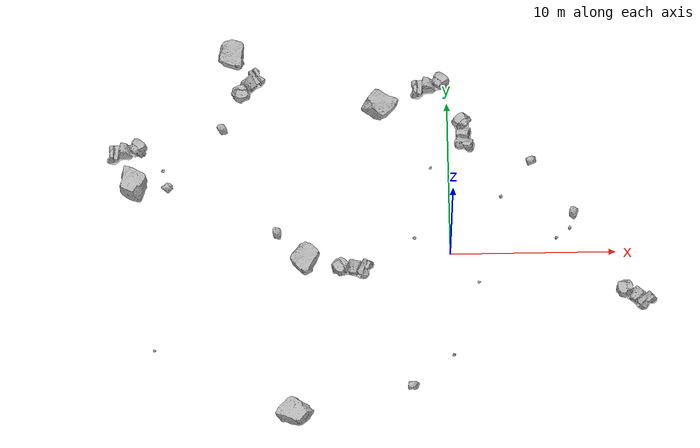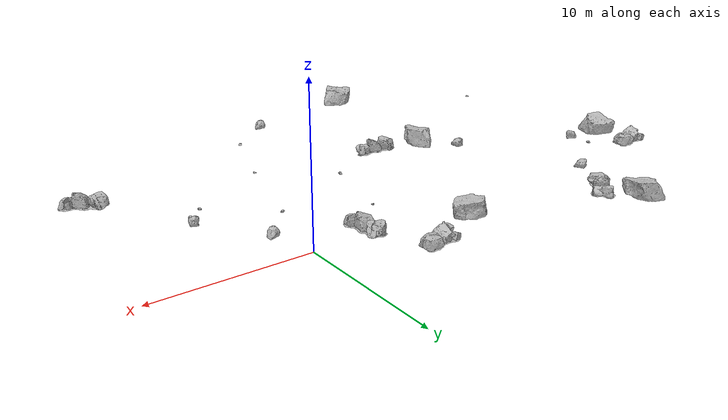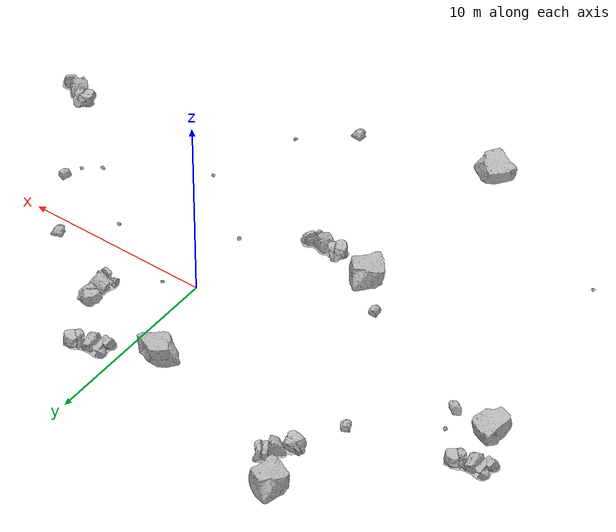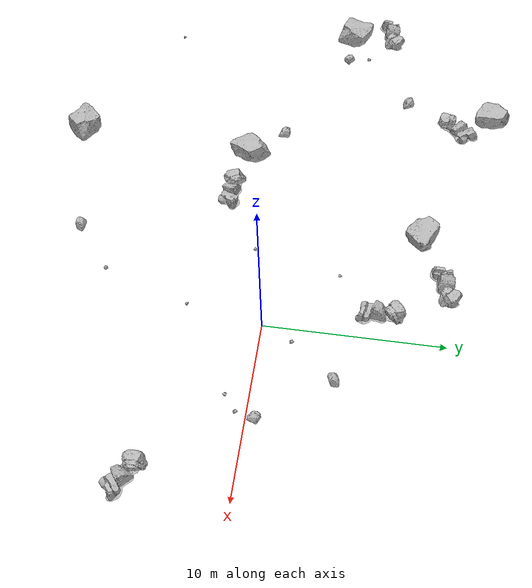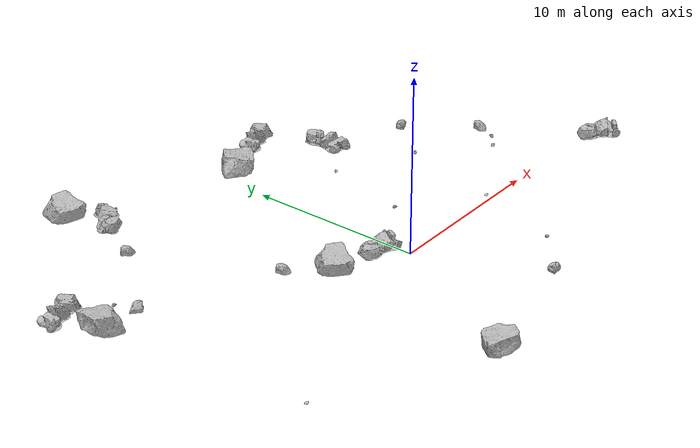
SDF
<sdf version="1.7">
 <world name="marsyard">
  <gravity>0 0 -9.81</gravity>
  <physics name="dart_physics" type="ignored">
   <max_step_size>0.003</max_step_size>
   <real_time_update_rate>333</real_time_update_rate>
   <real_time_factor>1.0</real_time_factor>
  </physics>
  <plugin filename="ignition-gazebo-physics-system" name="ignition::gazebo::systems::Physics"/>
  <plugin filename="ignition-gazebo-user-commands-system" name="ignition::gazebo::systems::UserCommands"/>
  <plugin filename="ignition-gazebo-scene-broadcaster-system" name="ignition::gazebo::systems::SceneBroadcaster"/>
  <plugin filename="ignition-gazebo-contact-system" name="ignition::gazebo::systems::Contact"/>
  <scene>
   <ambient>0.95 0.95 0.95 1</ambient>
   <background>0.70 0.70 0.70 1</background>
   <shadows>false</shadows>
  </scene>
  <light type="directional" name="sun">
   <cast_shadows>false</cast_shadows>
   <pose>0 0 30 0 0 0</pose>
   <diffuse>1 1 1 1</diffuse>
   <specular>0.15 0.15 0.15 1</specular>
   <direction>-0.35 0.1 -0.93</direction>
  </light>
  <model name="Rock_1">
   <static>true</static>
   <pose>-12.1127 9.4394 4.0000 0.0000 0.0000 0.9002</pose>
   <link name="link">
    <visual name="visual">
     <geometry><mesh><uri>package://rock_generator/rocks_ws/rock_2/meshes/rock_2.stl</uri></mesh></geometry>
    </visual>
    <collision name="collision">
     <geometry><mesh><uri>package://rock_generator/rocks_ws/rock_2/meshes/rock_2.stl</uri></mesh></geometry>
    </collision>
   </link>
  </model>
  <model name="Rock_2">
   <static>true</static>
   <pose>7.0466 -0.0682 4.0000 0.0000 0.0000 2.5591</pose>
   <link name="link">
    <visual name="visual">
     <geometry><mesh><uri>package://rock_generator/rocks_ws/rock_9/meshes/rock_9.stl</uri></mesh></geometry>
    </visual>
    <collision name="collision">
     <geometry><mesh><uri>package://rock_generator/rocks_ws/rock_9/meshes/rock_9.stl</uri></mesh></geometry>
    </collision>
   </link>
  </model>
  <model name="Rock_3">
   <static>true</static>
   <pose>-13.6706 6.5860 4.0000 0.0000 0.0000 3.1077</pose>
   <link name="link">
    <visual name="visual">
     <geometry><mesh><uri>package://rock_generator/rocks_ws/rock_3/meshes/rock_3.stl</uri></mesh></geometry>
    </visual>
    <collision name="collision">
     <geometry><mesh><uri>package://rock_generator/rocks_ws/rock_3/meshes/rock_3.stl</uri></mesh></geometry>
    </collision>
   </link>
  </model>
  <model name="Rock_5">
   <static>true</static>
   <pose>6.2349 -0.7087 4.0000 0.0000 0.0000 1.3610</pose>
   <link name="link">
    <visual name="visual">
     <geometry><mesh><uri>package://rock_generator/rocks_ws/rock_9/meshes/rock_9.stl</uri></mesh></geometry>
    </visual>
    <collision name="collision">
     <geometry><mesh><uri>package://rock_generator/rocks_ws/rock_9/meshes/rock_9.stl</uri></mesh></geometry>
    </collision>
   </link>
  </model>
  <model name="Rock_7">
   <static>true</static>
   <pose>-17.6371 -7.5418 4.0000 0.0000 0.0000 2.0001</pose>
   <link name="link">
    <visual name="visual">
     <geometry><mesh><uri>package://rock_generator/rocks_ws/rock_7/meshes/rock_7.stl</uri></mesh></geometry>
    </visual>
    <collision name="collision">
     <geometry><mesh><uri>package://rock_generator/rocks_ws/rock_7/meshes/rock_7.stl</uri></mesh></geometry>
    </collision>
   </link>
  </model>
  <model name="Rock_8">
   <static>true</static>
   <pose>-12.9017 11.4204 4.0000 0.0000 0.0000 -2.6936</pose>
   <link name="link">
    <visual name="visual">
     <geometry><mesh><uri>package://rock_generator/rocks_ws/rock_1/meshes/rock_1.stl</uri></mesh></geometry>
    </visual>
    <collision name="collision">
     <geometry><mesh><uri>package://rock_generator/rocks_ws/rock_1/meshes/rock_1.stl</uri></mesh></geometry>
    </collision>
   </link>
  </model>
  <model name="Rock_9">
   <static>true</static>
   <pose>1.5632 -3.4748 4.0000 0.0000 0.0000 2.2478</pose>
   <link name="link">
    <visual name="visual">
     <geometry><mesh><uri>package://rock_generator/rocks_ws/rock_7/meshes/rock_7.stl</uri></mesh></geometry>
    </visual>
    <collision name="collision">
     <geometry><mesh><uri>package://rock_generator/rocks_ws/rock_7/meshes/rock_7.stl</uri></mesh></geometry>
    </collision>
   </link>
  </model>
  <model name="Rock_12">
   <static>true</static>
   <pose>4.9096 4.2691 4.0000 0.0000 0.0000 -1.7466</pose>
   <link name="link">
    <visual name="visual">
     <geometry><mesh><uri>package://rock_generator/rocks_ws/rock_3/meshes/rock_3.stl</uri></mesh></geometry>
    </visual>
    <collision name="collision">
     <geometry><mesh><uri>package://rock_generator/rocks_ws/rock_3/meshes/rock_3.stl</uri></mesh></geometry>
    </collision>
   </link>
  </model>
  <model name="Rock_13">
   <static>true</static>
   <pose>10.7159 -4.4183 4.0000 0.0000 0.0000 -0.5274</pose>
   <link name="link">
    <visual name="visual">
     <geometry><mesh><uri>package://rock_generator/rocks_ws/rock_2/meshes/rock_2.stl</uri></mesh></geometry>
    </visual>
    <collision name="collision">
     <geometry><mesh><uri>package://rock_generator/rocks_ws/rock_2/meshes/rock_2.stl</uri></mesh></geometry>
    </collision>
   </link>
  </model>
  <model name="Rock_15">
   <static>true</static>
   <pose>-19.1155 3.0818 4.0000 0.0000 0.0000 0.3928</pose>
   <link name="link">
    <visual name="visual">
     <geometry><mesh><uri>package://rock_generator/rocks_ws/rock_1/meshes/rock_1.stl</uri></mesh></geometry>
    </visual>
    <collision name="collision">
     <geometry><mesh><uri>package://rock_generator/rocks_ws/rock_1/meshes/rock_1.stl</uri></mesh></geometry>
    </collision>
   </link>
  </model>
  <model name="Rock_16">
   <static>true</static>
   <pose>-9.5150 -11.7406 4.0000 0.0000 0.0000 1.6917</pose>
   <link name="link">
    <visual name="visual">
     <geometry><mesh><uri>package://rock_generator/rocks_ws/rock_1/meshes/rock_1.stl</uri></mesh></geometry>
    </visual>
    <collision name="collision">
     <geometry><mesh><uri>package://rock_generator/rocks_ws/rock_1/meshes/rock_1.stl</uri></mesh></geometry>
    </collision>
   </link>
  </model>
  <model name="Rock_19">
   <static>true</static>
   <pose>-1.1598 3.9647 4.0000 0.0000 0.0000 -2.8681</pose>
   <link name="link">
    <visual name="visual">
     <geometry><mesh><uri>package://rock_generator/rocks_ws/rock_7/meshes/rock_7.stl</uri></mesh></geometry>
    </visual>
    <collision name="collision">
     <geometry><mesh><uri>package://rock_generator/rocks_ws/rock_7/meshes/rock_7.stl</uri></mesh></geometry>
    </collision>
   </link>
  </model>
  <model name="Rock_21">
   <static>true</static>
   <pose>-10.4216 -0.2347 4.0000 0.0000 0.0000 2.6763</pose>
   <link name="link">
    <visual name="visual">
     <geometry><mesh><uri>package://rock_generator/rocks_ws/rock_3/meshes/rock_3.stl</uri></mesh></geometry>
    </visual>
    <collision name="collision">
     <geometry><mesh><uri>package://rock_generator/rocks_ws/rock_3/meshes/rock_3.stl</uri></mesh></geometry>
    </collision>
   </link>
  </model>
  <model name="Rock_22">
   <static>true</static>
   <pose>-1.0705 9.3734 4.0000 0.0000 0.0000 -2.8267</pose>
   <link name="link">
    <visual name="visual">
     <geometry><mesh><uri>package://rock_generator/rocks_ws/rock_2/meshes/rock_2.stl</uri></mesh></geometry>
    </visual>
    <collision name="collision">
     <geometry><mesh><uri>package://rock_generator/rocks_ws/rock_2/meshes/rock_2.stl</uri></mesh></geometry>
    </collision>
   </link>
  </model>
  <model name="Rock_23">
   <static>true</static>
   <pose>7.2572 0.8362 4.0000 0.0000 0.0000 2.2958</pose>
   <link name="link">
    <visual name="visual">
     <geometry><mesh><uri>package://rock_generator/rocks_ws/rock_3/meshes/rock_3.stl</uri></mesh></geometry>
    </visual>
    <collision name="collision">
     <geometry><mesh><uri>package://rock_generator/rocks_ws/rock_3/meshes/rock_3.stl</uri></mesh></geometry>
    </collision>
   </link>
  </model>
  <model name="Rock_24">
   <static>true</static>
   <pose>-4.0516 8.0776 4.0000 0.0000 0.0000 -1.4943</pose>
   <link name="link">
    <visual name="visual">
     <geometry><mesh><uri>package://rock_generator/rocks_ws/rock_1/meshes/rock_1.stl</uri></mesh></geometry>
    </visual>
    <collision name="collision">
     <geometry><mesh><uri>package://rock_generator/rocks_ws/rock_1/meshes/rock_1.stl</uri></mesh></geometry>
    </collision>
   </link>
  </model>
  <model name="Rock_25">
   <static>true</static>
   <pose>3.0085 2.0274 4.0000 0.0000 0.0000 2.3454</pose>
   <link name="link">
    <visual name="visual">
     <geometry><mesh><uri>package://rock_generator/rocks_ws/rock_9/meshes/rock_9.stl</uri></mesh></geometry>
    </visual>
    <collision name="collision">
     <geometry><mesh><uri>package://rock_generator/rocks_ws/rock_9/meshes/rock_9.stl</uri></mesh></geometry>
    </collision>
   </link>
  </model>
  <model name="Rock_28">
   <static>true</static>
   <pose>-17.2022 4.0158 4.0000 0.0000 0.0000 0.2180</pose>
   <link name="link">
    <visual name="visual">
     <geometry><mesh><uri>package://rock_generator/rocks_ws/rock_9/meshes/rock_9.stl</uri></mesh></geometry>
    </visual>
    <collision name="collision">
     <geometry><mesh><uri>package://rock_generator/rocks_ws/rock_9/meshes/rock_9.stl</uri></mesh></geometry>
    </collision>
   </link>
  </model>
  <model name="Rock_29">
   <static>true</static>
   <pose>-6.0046 -2.4779 4.0000 0.0000 0.0000 -0.0550</pose>
   <link name="link">
    <visual name="visual">
     <geometry><mesh><uri>package://rock_generator/rocks_ws/rock_2/meshes/rock_2.stl</uri></mesh></geometry>
    </visual>
    <collision name="collision">
     <geometry><mesh><uri>package://rock_generator/rocks_ws/rock_2/meshes/rock_2.stl</uri></mesh></geometry>
    </collision>
   </link>
  </model>
  <model name="Rock_31">
   <static>true</static>
   <pose>-0.0194 -8.0495 4.0000 0.0000 0.0000 -1.6283</pose>
   <link name="link">
    <visual name="visual">
     <geometry><mesh><uri>package://rock_generator/rocks_ws/rock_9/meshes/rock_9.stl</uri></mesh></geometry>
    </visual>
    <collision name="collision">
     <geometry><mesh><uri>package://rock_generator/rocks_ws/rock_9/meshes/rock_9.stl</uri></mesh></geometry>
    </collision>
   </link>
  </model>
  <model name="Rock_32">
   <static>true</static>
   <pose>-2.2229 -0.5838 4.0000 0.0000 0.0000 -0.0293</pose>
   <link name="link">
    <visual name="visual">
     <geometry><mesh><uri>package://rock_generator/rocks_ws/rock_9/meshes/rock_9.stl</uri></mesh></geometry>
    </visual>
    <collision name="collision">
     <geometry><mesh><uri>package://rock_generator/rocks_ws/rock_9/meshes/rock_9.stl</uri></mesh></geometry>
    </collision>
   </link>
  </model>
  <model name="Rock_33">
   <static>true</static>
   <pose>-16.9365 2.8956 4.0000 0.0000 0.0000 0.3474</pose>
   <link name="link">
    <visual name="visual">
     <geometry><mesh><uri>package://rock_generator/rocks_ws/rock_3/meshes/rock_3.stl</uri></mesh></geometry>
    </visual>
    <collision name="collision">
     <geometry><mesh><uri>package://rock_generator/rocks_ws/rock_3/meshes/rock_3.stl</uri></mesh></geometry>
    </collision>
   </link>
  </model>
  <model name="Rock_35">
   <static>true</static>
   <pose>-2.4288 -10.0360 4.0000 0.0000 0.0000 -2.1525</pose>
   <link name="link">
    <visual name="visual">
     <geometry><mesh><uri>package://rock_generator/rocks_ws/rock_3/meshes/rock_3.stl</uri></mesh></geometry>
    </visual>
    <collision name="collision">
     <geometry><mesh><uri>package://rock_generator/rocks_ws/rock_3/meshes/rock_3.stl</uri></mesh></geometry>
    </collision>
   </link>
  </model>
  <model name="Rock_36">
   <static>true</static>
   <pose>-19.3201 5.2831 4.0000 0.0000 0.0000 -2.8883</pose>
   <link name="link">
    <visual name="visual">
     <geometry><mesh><uri>package://rock_generator/rocks_ws/rock_2/meshes/rock_2.stl</uri></mesh></geometry>
    </visual>
    <collision name="collision">
     <geometry><mesh><uri>package://rock_generator/rocks_ws/rock_2/meshes/rock_2.stl</uri></mesh></geometry>
    </collision>
   </link>
  </model>
  <model name="Rock_37">
   <static>true</static>
   <pose>-8.6322 -2.0170 4.0000 0.0000 0.0000 -3.1387</pose>
   <link name="link">
    <visual name="visual">
     <geometry><mesh><uri>package://rock_generator/rocks_ws/rock_1/meshes/rock_1.stl</uri></mesh></geometry>
    </visual>
    <collision name="collision">
     <geometry><mesh><uri>package://rock_generator/rocks_ws/rock_1/meshes/rock_1.stl</uri></mesh></geometry>
    </collision>
   </link>
  </model>
  <model name="Rock_38">
   <static>true</static>
   <pose>0.8376 6.2679 4.0000 0.0000 0.0000 -1.4554</pose>
   <link name="link">
    <visual name="visual">
     <geometry><mesh><uri>package://rock_generator/rocks_ws/rock_2/meshes/rock_2.stl</uri></mesh></geometry>
    </visual>
    <collision name="collision">
     <geometry><mesh><uri>package://rock_generator/rocks_ws/rock_2/meshes/rock_2.stl</uri></mesh></geometry>
    </collision>
   </link>
  </model>
 </world>
</sdf>
